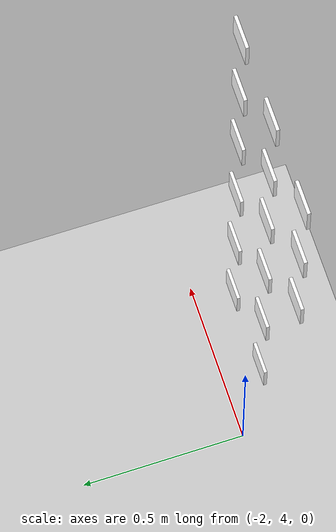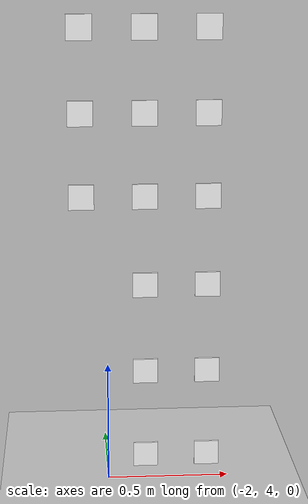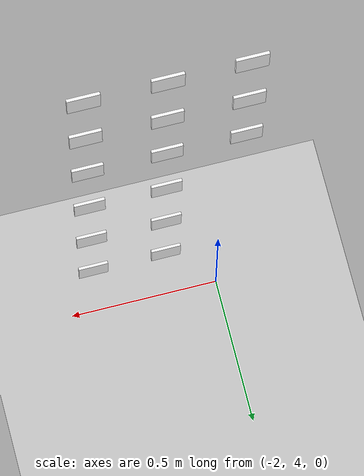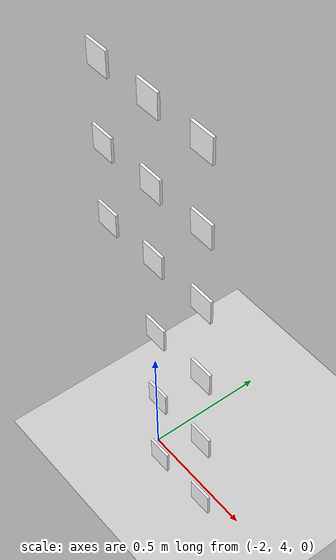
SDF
<sdf version="1.6">
 <world name="default">
  <include><uri>model://ground_plane</uri></include>
  <include><uri>model://sun</uri></include>
  <model name="stag_r2c1_l1_m1">
   <static>true</static>
   <pose>-1.6 3.9 0.146 1.5708 0 0</pose>
   <link name="marker_link">
    <collision name="collision"><geometry><box><size>0.1 0.1 0.01</size></box></geometry></collision>
    <visual name="visual">
     <geometry><box><size>0.1 0.1 0.01</size></box></geometry>
     <material>
      <script>
       <uri>model://STag_marker/materials/scripts</uri>
       <uri>model://STag_marker/materials/textures</uri>
       <name>STagMarker/marker_01509</name>
      </script>
      <ambient>1 1 1 1</ambient>
      <diffuse>1 1 1 1</diffuse>
     </material>
     <pose>0 0 0.001 0 0 0</pose>
    </visual>
   </link>
  </model>
  <model name="stag_r2c1_l1_m2">
   <static>true</static>
   <pose>-1.85 3.9 0.146 1.5708 0 0</pose>
   <link name="marker_link">
    <collision name="collision"><geometry><box><size>0.1 0.1 0.01</size></box></geometry></collision>
    <visual name="visual">
     <geometry><box><size>0.1 0.1 0.01</size></box></geometry>
     <material>
      <script>
       <uri>model://STag_marker/materials/scripts</uri>
       <uri>model://STag_marker/materials/textures</uri>
       <name>STagMarker/marker_01579</name>
      </script>
      <ambient>1 1 1 1</ambient>
      <diffuse>1 1 1 1</diffuse>
     </material>
     <pose>0 0 0.001 0 0 0</pose>
    </visual>
   </link>
  </model>
  <model name="stag_r2c1_l2_m1">
   <static>true</static>
   <pose>-1.6 3.9 0.506 1.5708 0 0</pose>
   <link name="marker_link">
    <collision name="collision"><geometry><box><size>0.1 0.1 0.01</size></box></geometry></collision>
    <visual name="visual">
     <geometry><box><size>0.1 0.1 0.01</size></box></geometry>
     <material>
      <script>
       <uri>model://STag_marker/materials/scripts</uri>
       <uri>model://STag_marker/materials/textures</uri>
       <name>STagMarker/marker_01690</name>
      </script>
      <ambient>1 1 1 1</ambient>
      <diffuse>1 1 1 1</diffuse>
     </material>
     <pose>0 0 0.001 0 0 0</pose>
    </visual>
   </link>
  </model>
  <model name="stag_r2c1_l2_m2">
   <static>true</static>
   <pose>-1.85 3.9 0.506 1.5708 0 0</pose>
   <link name="marker_link">
    <collision name="collision"><geometry><box><size>0.1 0.1 0.01</size></box></geometry></collision>
    <visual name="visual">
     <geometry><box><size>0.1 0.1 0.01</size></box></geometry>
     <material>
      <script>
       <uri>model://STag_marker/materials/scripts</uri>
       <uri>model://STag_marker/materials/textures</uri>
       <name>STagMarker/marker_01824</name>
      </script>
      <ambient>1 1 1 1</ambient>
      <diffuse>1 1 1 1</diffuse>
     </material>
     <pose>0 0 0.001 0 0 0</pose>
    </visual>
   </link>
  </model>
  <model name="stag_r2c1_l3_m1">
   <static>true</static>
   <pose>-1.6 3.9 0.867 1.5708 0 0</pose>
   <link name="marker_link">
    <collision name="collision"><geometry><box><size>0.1 0.1 0.01</size></box></geometry></collision>
    <visual name="visual">
     <geometry><box><size>0.1 0.1 0.01</size></box></geometry>
     <material>
      <script>
       <uri>model://STag_marker/materials/scripts</uri>
       <uri>model://STag_marker/materials/textures</uri>
       <name>STagMarker/marker_02027</name>
      </script>
      <ambient>1 1 1 1</ambient>
      <diffuse>1 1 1 1</diffuse>
     </material>
     <pose>0 0 0.001 0 0 0</pose>
    </visual>
   </link>
  </model>
  <model name="stag_r2c1_l3_m2">
   <static>true</static>
   <pose>-1.85 3.9 0.867 1.5708 0 0</pose>
   <link name="marker_link">
    <collision name="collision"><geometry><box><size>0.1 0.1 0.01</size></box></geometry></collision>
    <visual name="visual">
     <geometry><box><size>0.1 0.1 0.01</size></box></geometry>
     <material>
      <script>
       <uri>model://STag_marker/materials/scripts</uri>
       <uri>model://STag_marker/materials/textures</uri>
       <name>STagMarker/marker_02149</name>
      </script>
      <ambient>1 1 1 1</ambient>
      <diffuse>1 1 1 1</diffuse>
     </material>
     <pose>0 0 0.001 0 0 0</pose>
    </visual>
   </link>
  </model>
  <model name="stag_r2c1_l4_m1">
   <static>true</static>
   <pose>-1.6 3.9 1.227 1.5708 0 0</pose>
   <link name="marker_link">
    <collision name="collision"><geometry><box><size>0.1 0.1 0.01</size></box></geometry></collision>
    <visual name="visual">
     <geometry><box><size>0.1 0.1 0.01</size></box></geometry>
     <material>
      <script>
       <uri>model://STag_marker/materials/scripts</uri>
       <uri>model://STag_marker/materials/textures</uri>
       <name>STagMarker/marker_02288</name>
      </script>
      <ambient>1 1 1 1</ambient>
      <diffuse>1 1 1 1</diffuse>
     </material>
     <pose>0 0 0.001 0 0 0</pose>
    </visual>
   </link>
  </model>
  <model name="stag_r2c1_l4_m2">
   <static>true</static>
   <pose>-1.85 3.9 1.227 1.5708 0 0</pose>
   <link name="marker_link">
    <collision name="collision"><geometry><box><size>0.1 0.1 0.01</size></box></geometry></collision>
    <visual name="visual">
     <geometry><box><size>0.1 0.1 0.01</size></box></geometry>
     <material>
      <script>
       <uri>model://STag_marker/materials/scripts</uri>
       <uri>model://STag_marker/materials/textures</uri>
       <name>STagMarker/marker_02346</name>
      </script>
      <ambient>1 1 1 1</ambient>
      <diffuse>1 1 1 1</diffuse>
     </material>
     <pose>0 0 0.001 0 0 0</pose>
    </visual>
   </link>
  </model>
  <model name="stag_r2c1_l4_m3">
   <static>true</static>
   <pose>-2.1 3.9 1.227 1.5708 0 0</pose>
   <link name="marker_link">
    <collision name="collision"><geometry><box><size>0.1 0.1 0.01</size></box></geometry></collision>
    <visual name="visual">
     <geometry><box><size>0.1 0.1 0.01</size></box></geometry>
     <material>
      <script>
       <uri>model://STag_marker/materials/scripts</uri>
       <uri>model://STag_marker/materials/textures</uri>
       <name>STagMarker/marker_02365</name>
      </script>
      <ambient>1 1 1 1</ambient>
      <diffuse>1 1 1 1</diffuse>
     </material>
     <pose>0 0 0.001 0 0 0</pose>
    </visual>
   </link>
  </model>
  <model name="stag_r2c1_l5_m1">
   <static>true</static>
   <pose>-1.6 3.9 1.556 1.5708 0 0</pose>
   <link name="marker_link">
    <collision name="collision"><geometry><box><size>0.1 0.1 0.01</size></box></geometry></collision>
    <visual name="visual">
     <geometry><box><size>0.1 0.1 0.01</size></box></geometry>
     <material>
      <script>
       <uri>model://STag_marker/materials/scripts</uri>
       <uri>model://STag_marker/materials/textures</uri>
       <name>STagMarker/marker_00426</name>
      </script>
      <ambient>1 1 1 1</ambient>
      <diffuse>1 1 1 1</diffuse>
     </material>
     <pose>0 0 0.001 0 0 0</pose>
    </visual>
   </link>
  </model>
  <model name="stag_r2c1_l5_m2">
   <static>true</static>
   <pose>-1.85 3.9 1.556 1.5708 0 0</pose>
   <link name="marker_link">
    <collision name="collision"><geometry><box><size>0.1 0.1 0.01</size></box></geometry></collision>
    <visual name="visual">
     <geometry><box><size>0.1 0.1 0.01</size></box></geometry>
     <material>
      <script>
       <uri>model://STag_marker/materials/scripts</uri>
       <uri>model://STag_marker/materials/textures</uri>
       <name>STagMarker/marker_00519</name>
      </script>
      <ambient>1 1 1 1</ambient>
      <diffuse>1 1 1 1</diffuse>
     </material>
     <pose>0 0 0.001 0 0 0</pose>
    </visual>
   </link>
  </model>
  <model name="stag_r2c1_l5_m3">
   <static>true</static>
   <pose>-2.1 3.9 1.556 1.5708 0 0</pose>
   <link name="marker_link">
    <collision name="collision"><geometry><box><size>0.1 0.1 0.01</size></box></geometry></collision>
    <visual name="visual">
     <geometry><box><size>0.1 0.1 0.01</size></box></geometry>
     <material>
      <script>
       <uri>model://STag_marker/materials/scripts</uri>
       <uri>model://STag_marker/materials/textures</uri>
       <name>STagMarker/marker_00525</name>
      </script>
      <ambient>1 1 1 1</ambient>
      <diffuse>1 1 1 1</diffuse>
     </material>
     <pose>0 0 0.001 0 0 0</pose>
    </visual>
   </link>
  </model>
  <model name="stag_r2c1_l6_m1">
   <static>true</static>
   <pose>-1.6 3.9 1.886 1.5708 0 0</pose>
   <link name="marker_link">
    <collision name="collision"><geometry><box><size>0.1 0.1 0.01</size></box></geometry></collision>
    <visual name="visual">
     <geometry><box><size>0.1 0.1 0.01</size></box></geometry>
     <material>
      <script>
       <uri>model://STag_marker/materials/scripts</uri>
       <uri>model://STag_marker/materials/textures</uri>
       <name>STagMarker/marker_00563</name>
      </script>
      <ambient>1 1 1 1</ambient>
      <diffuse>1 1 1 1</diffuse>
     </material>
     <pose>0 0 0.001 0 0 0</pose>
    </visual>
   </link>
  </model>
  <model name="stag_r2c1_l6_m2">
   <static>true</static>
   <pose>-1.85 3.9 1.886 1.5708 0 0</pose>
   <link name="marker_link">
    <collision name="collision"><geometry><box><size>0.1 0.1 0.01</size></box></geometry></collision>
    <visual name="visual">
     <geometry><box><size>0.1 0.1 0.01</size></box></geometry>
     <material>
      <script>
       <uri>model://STag_marker/materials/scripts</uri>
       <uri>model://STag_marker/materials/textures</uri>
       <name>STagMarker/marker_00578</name>
      </script>
      <ambient>1 1 1 1</ambient>
      <diffuse>1 1 1 1</diffuse>
     </material>
     <pose>0 0 0.001 0 0 0</pose>
    </visual>
   </link>
  </model>
  <model name="stag_r2c1_l6_m3">
   <static>true</static>
   <pose>-2.1 3.9 1.886 1.5708 0 0</pose>
   <link name="marker_link">
    <collision name="collision"><geometry><box><size>0.1 0.1 0.01</size></box></geometry></collision>
    <visual name="visual">
     <geometry><box><size>0.1 0.1 0.01</size></box></geometry>
     <material>
      <script>
       <uri>model://STag_marker/materials/scripts</uri>
       <uri>model://STag_marker/materials/textures</uri>
       <name>STagMarker/marker_00679</name>
      </script>
      <ambient>1 1 1 1</ambient>
      <diffuse>1 1 1 1</diffuse>
     </material>
     <pose>0 0 0.001 0 0 0</pose>
    </visual>
   </link>
  </model>
 </world>
</sdf>
